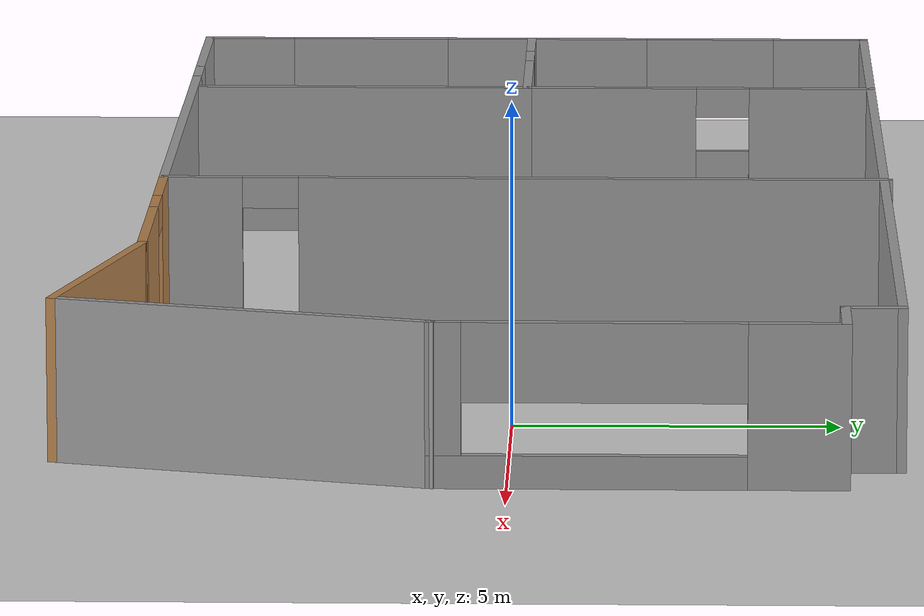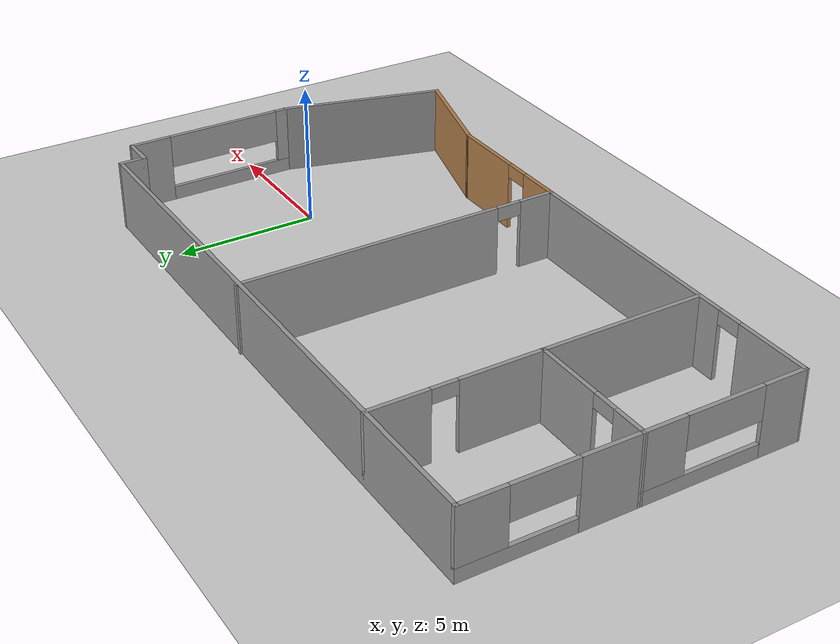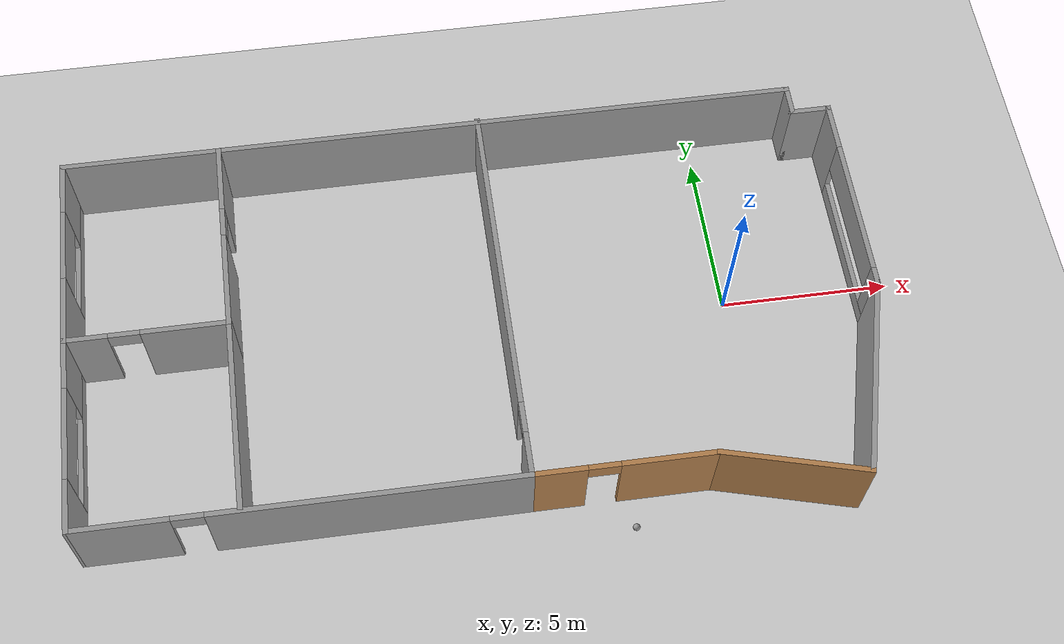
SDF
<sdf version="1.6">
 <world name="default">
  <model name="ground_plane">
   <static>1</static>
   <link name="link">
    <collision name="collision">
     <geometry><plane><normal>0 0 1</normal><size>100 100</size></plane></geometry>
     <surface><friction><ode><mu>100</mu><mu2>50</mu2></ode></friction></surface>
    </collision>
    <visual name="visual">
     <cast_shadows>0</cast_shadows>
     <geometry><plane><normal>0 0 1</normal><size>100 100</size></plane></geometry>
     <material>
      <script><uri>file://media/materials/scripts/gazebo.material</uri><name>Gazebo/Grey</name></script>
     </material>
    </visual>
   </link>
  </model>
  <model name="my_ball">
   <link name="link_1">
    <inertial>
     <mass>1</mass>
     <inertia><ixx>0.1</ixx><ixy>0</ixy><ixz>0</ixz><iyy>0.1</iyy><iyz>0</iyz><izz>0.1</izz></inertia>
    </inertial>
    <visual name="visual">
     <geometry><sphere><radius>0.1</radius></sphere></geometry>
     <material>
      <lighting>1</lighting>
      <script><uri>file://media/materials/scripts/gazebo.material</uri><name>Gazebo/Grey</name></script>
      <shader type="pixel"><normal_map>__default__</normal_map></shader>
      <ambient>1 1 1 1</ambient>
      <diffuse>1 1 1 1</diffuse>
      <specular>1 1 1 1</specular>
      <emissive>1 1 1 1</emissive>
     </material>
    </visual>
    <collision name="collision">
     <geometry><sphere><radius>0.1</radius></sphere></geometry>
     <surface>
      <friction>
       <ode><mu>1</mu><mu2>1</mu2><fdir1>0 0 0</fdir1><slip1>0</slip1><slip2>0</slip2></ode>
       <torsional>
        <coefficient>1</coefficient>
        <patch_radius>0</patch_radius>
        <surface_radius>0</surface_radius>
        <use_patch_radius>1</use_patch_radius>
        <ode><slip>0</slip></ode>
       </torsional>
      </friction>
      <bounce><restitution_coefficient>0</restitution_coefficient><threshold>1e+06</threshold></bounce>
      <contact>
       <collide_without_contact>0</collide_without_contact>
       <collide_without_contact_bitmask>1</collide_without_contact_bitmask>
       <collide_bitmask>1</collide_bitmask>
       <ode>
        <soft_cfm>0</soft_cfm>
        <soft_erp>0.2</soft_erp>
        <kp>1e+13</kp>
        <kd>1</kd>
        <max_vel>0.01</max_vel>
        <min_depth>0</min_depth>
       </ode>
       <bullet>
        <split_impulse>1</split_impulse>
        <split_impulse_penetration_threshold>-0.01</split_impulse_penetration_threshold>
        <soft_cfm>0</soft_cfm>
        <soft_erp>0.2</soft_erp>
        <kp>1e+13</kp>
        <kd>1</kd>
       </bullet>
      </contact>
     </surface>
    </collision>
   </link>
   <static>0</static>
   <pose>-3.78161 -6.66053 0.1 0 -0 0</pose>
  </model>
  <model name="my_building">
   <pose>-7.52646 -0.456913 0 0 -0 0</pose>
   <link name="Wall_10">
    <collision name="Wall_10_Collision">
     <geometry><box><size>4.25 0.15 2.5</size></box></geometry>
     <pose>0 0 1.25 0 -0 0</pose>
    </collision>
    <visual name="Wall_10_Visual">
     <pose>0 0 1.25 0 -0 0</pose>
     <geometry><box><size>4.25 0.15 2.5</size></box></geometry>
     <material>
      <script><uri>file://media/materials/scripts/gazebo.material</uri><name>Gazebo/Wood</name></script>
      <ambient>1 1 1 1</ambient>
     </material>
     <meta><layer>0</layer></meta>
    </visual>
    <pose>7.9725 -5.79157 0 0 -0 2.87979</pose>
   </link>
   <link name="Wall_11">
    <pose>3.44235 -5.26099 0 0 -0 3.14159</pose>
    <visual name="Wall_11_Visual_0">
     <pose>-1.24785 0 1.25 0 -0 0</pose>
     <geometry><box><size>2.7543 0.15 2.5</size></box></geometry>
     <material>
      <script><uri>file://media/materials/scripts/gazebo.material</uri><name>Gazebo/Wood</name></script>
      <ambient>1 1 1 1</ambient>
     </material>
     <meta><layer>0</layer></meta>
    </visual>
    <collision name="Wall_11_Collision_0">
     <geometry><box><size>2.7543 0.15 2.5</size></box></geometry>
     <pose>-1.24785 0 1.25 0 -0 0</pose>
    </collision>
    <visual name="Wall_11_Visual_1">
     <pose>1.82715 0 1.25 0 -0 0</pose>
     <geometry><box><size>1.5957 0.15 2.5</size></box></geometry>
     <material>
      <script><uri>file://media/materials/scripts/gazebo.material</uri><name>Gazebo/Wood</name></script>
      <ambient>1 1 1 1</ambient>
     </material>
     <meta><layer>0</layer></meta>
    </visual>
    <collision name="Wall_11_Collision_1">
     <geometry><box><size>1.5957 0.15 2.5</size></box></geometry>
     <pose>1.82715 0 1.25 0 -0 0</pose>
    </collision>
    <visual name="Wall_11_Visual_2">
     <pose>0.579298 0 2.25 0 -0 0</pose>
     <geometry><box><size>0.9 0.15 0.5</size></box></geometry>
     <material>
      <script><uri>file://media/materials/scripts/gazebo.material</uri><name>Gazebo/Wood</name></script>
      <ambient>1 1 1 1</ambient>
     </material>
     <meta><layer>0</layer></meta>
    </visual>
    <collision name="Wall_11_Collision_2">
     <geometry><box><size>0.9 0.15 0.5</size></box></geometry>
     <pose>0.579298 0 2.25 0 -0 0</pose>
    </collision>
   </link>
   <link name="Wall_12">
    <pose>0.892353 0.539007 0 0 -0 1.5708</pose>
    <visual name="Wall_12_Visual_0">
     <pose>-5.20647 0 1.25 0 -0 0</pose>
     <geometry><box><size>1.33705 0.15 2.5</size></box></geometry>
     <material>
      <script><uri>file://media/materials/scripts/gazebo.material</uri><name>Gazebo/Grey</name></script>
      <ambient>1 1 1 1</ambient>
     </material>
     <meta><layer>0</layer></meta>
    </visual>
    <collision name="Wall_12_Collision_0">
     <geometry><box><size>1.33705 0.15 2.5</size></box></geometry>
     <pose>-5.20647 0 1.25 0 -0 0</pose>
    </collision>
    <visual name="Wall_12_Visual_1">
     <pose>1.11853 0 1.25 0 -0 0</pose>
     <geometry><box><size>9.51295 0.15 2.5</size></box></geometry>
     <material>
      <script><uri>file://media/materials/scripts/gazebo.material</uri><name>Gazebo/Grey</name></script>
      <ambient>1 1 1 1</ambient>
     </material>
     <meta><layer>0</layer></meta>
    </visual>
    <collision name="Wall_12_Collision_1">
     <geometry><box><size>9.51295 0.15 2.5</size></box></geometry>
     <pose>1.11853 0 1.25 0 -0 0</pose>
    </collision>
    <visual name="Wall_12_Visual_2">
     <pose>-4.08795 0 2.25 0 -0 0</pose>
     <geometry><box><size>0.9 0.15 0.5</size></box></geometry>
     <material>
      <script><uri>file://media/materials/scripts/gazebo.material</uri><name>Gazebo/Grey</name></script>
      <ambient>1 1 1 1</ambient>
     </material>
     <meta><layer>0</layer></meta>
    </visual>
    <collision name="Wall_12_Collision_2">
     <geometry><box><size>0.9 0.15 0.5</size></box></geometry>
     <pose>-4.08795 0 2.25 0 -0 0</pose>
    </collision>
   </link>
   <link name="Wall_14">
    <pose>-5.28265 -5.26099 0 0 -0 3.14159</pose>
    <visual name="Wall_14_Visual_0">
     <pose>-1.85156 0 1.25 0 -0 0</pose>
     <geometry><box><size>8.79688 0.15 2.5</size></box></geometry>
     <material>
      <script><uri>file://media/materials/scripts/gazebo.material</uri><name>Gazebo/Grey</name></script>
      <ambient>1 1 1 1</ambient>
     </material>
     <meta><layer>0</layer></meta>
    </visual>
    <collision name="Wall_14_Collision_0">
     <geometry><box><size>8.79688 0.15 2.5</size></box></geometry>
     <pose>-1.85156 0 1.25 0 -0 0</pose>
    </collision>
    <visual name="Wall_14_Visual_1">
     <pose>4.84844 0 1.25 0 -0 0</pose>
     <geometry><box><size>2.80312 0.15 2.5</size></box></geometry>
     <material>
      <script><uri>file://media/materials/scripts/gazebo.material</uri><name>Gazebo/Grey</name></script>
      <ambient>1 1 1 1</ambient>
     </material>
     <meta><layer>0</layer></meta>
    </visual>
    <collision name="Wall_14_Collision_1">
     <geometry><box><size>2.80312 0.15 2.5</size></box></geometry>
     <pose>4.84844 0 1.25 0 -0 0</pose>
    </collision>
    <visual name="Wall_14_Visual_2">
     <pose>2.99688 0 2.25 0 -0 0</pose>
     <geometry><box><size>0.9 0.15 0.5</size></box></geometry>
     <material>
      <script><uri>file://media/materials/scripts/gazebo.material</uri><name>Gazebo/Grey</name></script>
      <ambient>1 1 1 1</ambient>
     </material>
     <meta><layer>0</layer></meta>
    </visual>
    <collision name="Wall_14_Collision_2">
     <geometry><box><size>0.9 0.15 0.5</size></box></geometry>
     <pose>2.99688 0 2.25 0 -0 0</pose>
    </collision>
   </link>
   <link name="Wall_15">
    <pose>-11.4705 -2.41624 0 0 -0 1.5753</pose>
    <visual name="Wall_15_Visual_0">
     <pose>-2.13567 0 1.25 0 -0 0</pose>
     <geometry><box><size>1.56823 0.15 2.5</size></box></geometry>
     <material>
      <script><uri>file://media/materials/scripts/gazebo.material</uri><name>Gazebo/Grey</name></script>
      <ambient>1 1 1 1</ambient>
     </material>
     <meta><layer>0</layer></meta>
    </visual>
    <collision name="Wall_15_Collision_0">
     <geometry><box><size>1.56823 0.15 2.5</size></box></geometry>
     <pose>-2.13567 0 1.25 0 -0 0</pose>
    </collision>
    <visual name="Wall_15_Visual_1">
     <pose>0.784114 0 0.25 0 -0 0</pose>
     <geometry><box><size>4.27134 0.15 0.5</size></box></geometry>
     <material>
      <script><uri>file://media/materials/scripts/gazebo.material</uri><name>Gazebo/Grey</name></script>
      <ambient>1 1 1 1</ambient>
     </material>
     <meta><layer>0</layer></meta>
    </visual>
    <collision name="Wall_15_Collision_1">
     <geometry><box><size>4.27134 0.15 0.5</size></box></geometry>
     <pose>0.784114 0 0.25 0 -0 0</pose>
    </collision>
    <visual name="Wall_15_Visual_2">
     <pose>2.14219 0 1.5 0 -0 0</pose>
     <geometry><box><size>1.55519 0.15 2</size></box></geometry>
     <material>
      <script><uri>file://media/materials/scripts/gazebo.material</uri><name>Gazebo/Grey</name></script>
      <ambient>1 1 1 1</ambient>
     </material>
     <meta><layer>0</layer></meta>
    </visual>
    <collision name="Wall_15_Collision_2">
     <geometry><box><size>1.55519 0.15 2</size></box></geometry>
     <pose>2.14219 0 1.5 0 -0 0</pose>
    </collision>
    <visual name="Wall_15_Visual_3">
     <pose>0.006522 0 1.9 0 -0 0</pose>
     <geometry><box><size>2.71615 0.15 1.2</size></box></geometry>
     <material>
      <script><uri>file://media/materials/scripts/gazebo.material</uri><name>Gazebo/Grey</name></script>
      <ambient>1 1 1 1</ambient>
     </material>
     <meta><layer>0</layer></meta>
    </visual>
    <collision name="Wall_15_Collision_3">
     <geometry><box><size>2.71615 0.15 1.2</size></box></geometry>
     <pose>0.006522 0 1.9 0 -0 0</pose>
    </collision>
   </link>
   <link name="Wall_16">
    <pose>-9.18326 0.428515 0 0 -0 0</pose>
    <visual name="Wall_16_Visual_0">
     <pose>-1.72713 0 1.25 0 -0 0</pose>
     <geometry><box><size>1.29574 0.15 2.5</size></box></geometry>
     <material>
      <script><uri>file://media/materials/scripts/gazebo.material</uri><name>Gazebo/Grey</name></script>
      <ambient>1 1 1 1</ambient>
     </material>
     <meta><layer>0</layer></meta>
    </visual>
    <collision name="Wall_16_Collision_0">
     <geometry><box><size>1.29574 0.15 2.5</size></box></geometry>
     <pose>-1.72713 0 1.25 0 -0 0</pose>
    </collision>
    <visual name="Wall_16_Visual_1">
     <pose>1.09787 0 1.25 0 -0 0</pose>
     <geometry><box><size>2.55426 0.15 2.5</size></box></geometry>
     <material>
      <script><uri>file://media/materials/scripts/gazebo.material</uri><name>Gazebo/Grey</name></script>
      <ambient>1 1 1 1</ambient>
     </material>
     <meta><layer>0</layer></meta>
    </visual>
    <collision name="Wall_16_Collision_1">
     <geometry><box><size>2.55426 0.15 2.5</size></box></geometry>
     <pose>1.09787 0 1.25 0 -0 0</pose>
    </collision>
    <visual name="Wall_16_Visual_2">
     <pose>-0.629257 0 2.25 0 -0 0</pose>
     <geometry><box><size>0.9 0.15 0.5</size></box></geometry>
     <material>
      <script><uri>file://media/materials/scripts/gazebo.material</uri><name>Gazebo/Grey</name></script>
      <ambient>1 1 1 1</ambient>
     </material>
     <meta><layer>0</layer></meta>
    </visual>
    <collision name="Wall_16_Collision_2">
     <geometry><box><size>0.9 0.15 0.5</size></box></geometry>
     <pose>-0.629257 0 2.25 0 -0 0</pose>
    </collision>
   </link>
   <link name="Wall_17">
    <pose>-6.88326 3.35351 0 0 -0 1.5708</pose>
    <visual name="Wall_17_Visual_0">
     <pose>-1.52159 0 1.25 0 -0 0</pose>
     <geometry><box><size>2.95682 0.15 2.5</size></box></geometry>
     <material>
      <script><uri>file://media/materials/scripts/gazebo.material</uri><name>Gazebo/Grey</name></script>
      <ambient>1 1 1 1</ambient>
     </material>
     <meta><layer>0</layer></meta>
    </visual>
    <collision name="Wall_17_Collision_0">
     <geometry><box><size>2.95682 0.15 2.5</size></box></geometry>
     <pose>-1.52159 0 1.25 0 -0 0</pose>
    </collision>
    <visual name="Wall_17_Visual_1">
     <pose>1.92841 0 1.25 0 -0 0</pose>
     <geometry><box><size>2.14318 0.15 2.5</size></box></geometry>
     <material>
      <script><uri>file://media/materials/scripts/gazebo.material</uri><name>Gazebo/Grey</name></script>
      <ambient>1 1 1 1</ambient>
     </material>
     <meta><layer>0</layer></meta>
    </visual>
    <collision name="Wall_17_Collision_1">
     <geometry><box><size>2.14318 0.15 2.5</size></box></geometry>
     <pose>1.92841 0 1.25 0 -0 0</pose>
    </collision>
    <visual name="Wall_17_Visual_2">
     <pose>0.406817 0 2.25 0 -0 0</pose>
     <geometry><box><size>0.9 0.15 0.5</size></box></geometry>
     <material>
      <script><uri>file://media/materials/scripts/gazebo.material</uri><name>Gazebo/Grey</name></script>
      <ambient>1 1 1 1</ambient>
     </material>
     <meta><layer>0</layer></meta>
    </visual>
    <collision name="Wall_17_Collision_2">
     <geometry><box><size>0.9 0.15 0.5</size></box></geometry>
     <pose>0.406817 0 2.25 0 -0 0</pose>
    </collision>
   </link>
   <link name="Wall_19">
    <collision name="Wall_19_Collision">
     <geometry><box><size>5.75 0.15 2.5</size></box></geometry>
     <pose>0 0 1.25 0 -0 0</pose>
    </collision>
    <visual name="Wall_19_Visual">
     <pose>0 0 1.25 0 -0 0</pose>
     <geometry><box><size>5.75 0.15 2.5</size></box></geometry>
     <material>
      <script><uri>file://media/materials/scripts/gazebo.material</uri><name>Gazebo/Grey</name></script>
      <ambient>1 1 1 1</ambient>
     </material>
     <meta><layer>0</layer></meta>
    </visual>
    <pose>-6.88326 -2.37148 0 0 0 -1.5708</pose>
   </link>
   <link name="Wall_3">
    <pose>-11.4833 3.35351 0 0 -0 1.5708</pose>
    <visual name="Wall_3_Visual_0">
     <pose>-1.94784 0 1.25 0 -0 0</pose>
     <geometry><box><size>2.10432 0.15 2.5</size></box></geometry>
     <material>
      <script><uri>file://media/materials/scripts/gazebo.material</uri><name>Gazebo/Grey</name></script>
      <ambient>1 1 1 1</ambient>
     </material>
     <meta><layer>0</layer></meta>
    </visual>
    <collision name="Wall_3_Collision_0">
     <geometry><box><size>2.10432 0.15 2.5</size></box></geometry>
     <pose>-1.94784 0 1.25 0 -0 0</pose>
    </collision>
    <visual name="Wall_3_Visual_1">
     <pose>1.05216 0 0.25 0 -0 0</pose>
     <geometry><box><size>3.89568 0.15 0.5</size></box></geometry>
     <material>
      <script><uri>file://media/materials/scripts/gazebo.material</uri><name>Gazebo/Grey</name></script>
      <ambient>1 1 1 1</ambient>
     </material>
     <meta><layer>0</layer></meta>
    </visual>
    <collision name="Wall_3_Collision_1">
     <geometry><box><size>3.89568 0.15 0.5</size></box></geometry>
     <pose>1.05216 0 0.25 0 -0 0</pose>
    </collision>
    <visual name="Wall_3_Visual_2">
     <pose>2.17037 0 1.5 0 -0 0</pose>
     <geometry><box><size>1.65927 0.15 2</size></box></geometry>
     <material>
      <script><uri>file://media/materials/scripts/gazebo.material</uri><name>Gazebo/Grey</name></script>
      <ambient>1 1 1 1</ambient>
     </material>
     <meta><layer>0</layer></meta>
    </visual>
    <collision name="Wall_3_Collision_2">
     <geometry><box><size>1.65927 0.15 2</size></box></geometry>
     <pose>2.17037 0 1.5 0 -0 0</pose>
    </collision>
    <visual name="Wall_3_Visual_3">
     <pose>0.222526 0 1.9 0 -0 0</pose>
     <geometry><box><size>2.23641 0.15 1.2</size></box></geometry>
     <material>
      <script><uri>file://media/materials/scripts/gazebo.material</uri><name>Gazebo/Grey</name></script>
      <ambient>1 1 1 1</ambient>
     </material>
     <meta><layer>0</layer></meta>
    </visual>
    <collision name="Wall_3_Collision_3">
     <geometry><box><size>2.23641 0.15 1.2</size></box></geometry>
     <pose>0.222526 0 1.9 0 -0 0</pose>
    </collision>
   </link>
   <link name="Wall_4">
    <collision name="Wall_4_Collision">
     <geometry><box><size>22 0.15 2.5</size></box></geometry>
     <pose>0 0 1.25 0 -0 0</pose>
    </collision>
    <visual name="Wall_4_Visual">
     <pose>0 0 1.25 0 -0 0</pose>
     <geometry><box><size>22 0.15 2.5</size></box></geometry>
     <material>
      <script><uri>file://media/materials/scripts/gazebo.material</uri><name>Gazebo/Grey</name></script>
      <ambient>1 1 1 1</ambient>
     </material>
     <meta><layer>0</layer></meta>
    </visual>
    <pose>-0.55826 6.27851 0 0 -0 0</pose>
   </link>
   <link name="Wall_5">
    <collision name="Wall_5_Collision">
     <geometry><box><size>1 0.15 2.5</size></box></geometry>
     <pose>0 0 1.25 0 -0 0</pose>
    </collision>
    <visual name="Wall_5_Visual">
     <pose>0 0 1.25 0 -0 0</pose>
     <geometry><box><size>1 0.15 2.5</size></box></geometry>
     <material>
      <script><uri>file://media/materials/scripts/gazebo.material</uri><name>Gazebo/Grey</name></script>
      <ambient>1 1 1 1</ambient>
     </material>
     <meta><layer>0</layer></meta>
    </visual>
    <pose>10.3667 5.85351 0 0 0 -1.5708</pose>
   </link>
   <link name="Wall_6">
    <collision name="Wall_6_Collision">
     <geometry><box><size>1.25 0.15 2.5</size></box></geometry>
     <pose>0 0 1.25 0 -0 0</pose>
    </collision>
    <visual name="Wall_6_Visual">
     <pose>0 0 1.25 0 -0 0</pose>
     <geometry><box><size>1.25 0.15 2.5</size></box></geometry>
     <material>
      <script><uri>file://media/materials/scripts/gazebo.material</uri><name>Gazebo/Grey</name></script>
      <ambient>1 1 1 1</ambient>
     </material>
     <meta><layer>0</layer></meta>
    </visual>
    <pose>10.9167 5.42851 0 0 -0 0</pose>
   </link>
   <link name="Wall_7">
    <pose>11.4667 2.37852 0 0 0 -1.5708</pose>
    <visual name="Wall_7_Visual_0">
     <pose>-2.36674 0 1.25 0 -0 0</pose>
     <geometry><box><size>1.51652 0.15 2.5</size></box></geometry>
     <material>
      <script><uri>file://media/materials/scripts/gazebo.material</uri><name>Gazebo/Grey</name></script>
      <ambient>1 1 1 1</ambient>
     </material>
     <meta><layer>0</layer></meta>
    </visual>
    <collision name="Wall_7_Collision_0">
     <geometry><box><size>1.51652 0.15 2.5</size></box></geometry>
     <pose>-2.36674 0 1.25 0 -0 0</pose>
    </collision>
    <visual name="Wall_7_Visual_1">
     <pose>0.758258 0 0.25 0 -0 0</pose>
     <geometry><box><size>4.73348 0.15 0.5</size></box></geometry>
     <material>
      <script><uri>file://media/materials/scripts/gazebo.material</uri><name>Gazebo/Grey</name></script>
      <ambient>1 1 1 1</ambient>
     </material>
     <meta><layer>0</layer></meta>
    </visual>
    <collision name="Wall_7_Collision_1">
     <geometry><box><size>4.73348 0.15 0.5</size></box></geometry>
     <pose>0.758258 0 0.25 0 -0 0</pose>
    </collision>
    <visual name="Wall_7_Visual_2">
     <pose>2.85836 0 1.5 0 -0 0</pose>
     <geometry><box><size>0.533285 0.15 2</size></box></geometry>
     <material>
      <script><uri>file://media/materials/scripts/gazebo.material</uri><name>Gazebo/Grey</name></script>
      <ambient>1 1 1 1</ambient>
     </material>
     <meta><layer>0</layer></meta>
    </visual>
    <collision name="Wall_7_Collision_2">
     <geometry><box><size>0.533285 0.15 2</size></box></geometry>
     <pose>2.85836 0 1.5 0 -0 0</pose>
    </collision>
    <visual name="Wall_7_Visual_3">
     <pose>0.491615 0 1.9 0 -0 0</pose>
     <geometry><box><size>4.2002 0.15 1.2</size></box></geometry>
     <material>
      <script><uri>file://media/materials/scripts/gazebo.material</uri><name>Gazebo/Grey</name></script>
      <ambient>1 1 1 1</ambient>
     </material>
     <meta><layer>0</layer></meta>
    </visual>
    <collision name="Wall_7_Collision_3">
     <geometry><box><size>4.2002 0.15 1.2</size></box></geometry>
     <pose>0.491615 0 1.9 0 -0 0</pose>
    </collision>
   </link>
   <link name="Wall_9">
    <collision name="Wall_9_Collision">
     <geometry><box><size>6 0.15 2.5</size></box></geometry>
     <pose>0 0 1.25 0 -0 0</pose>
    </collision>
    <visual name="Wall_9_Visual">
     <pose>0 0 1.25 0 -0 0</pose>
     <geometry><box><size>6 0.15 2.5</size></box></geometry>
     <material>
      <script><uri>file://media/materials/scripts/gazebo.material</uri><name>Gazebo/Grey</name></script>
      <ambient>1 1 1 1</ambient>
     </material>
     <meta><layer>0</layer></meta>
    </visual>
    <pose>10.7097 -3.49682 0 0 0 -1.8326</pose>
   </link>
   <static>1</static>
  </model>
 </world>
</sdf>
